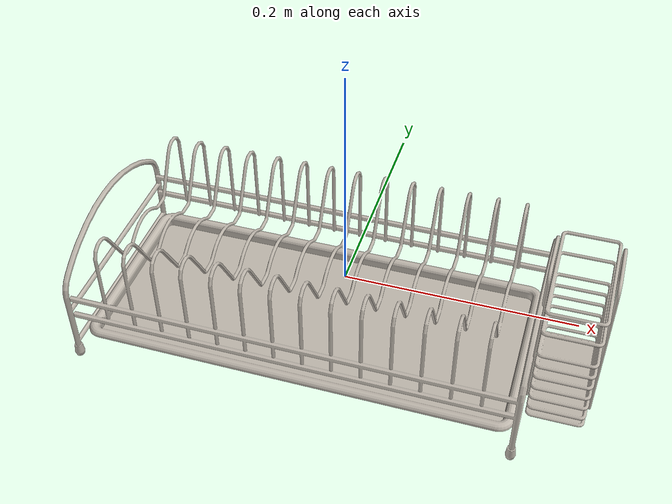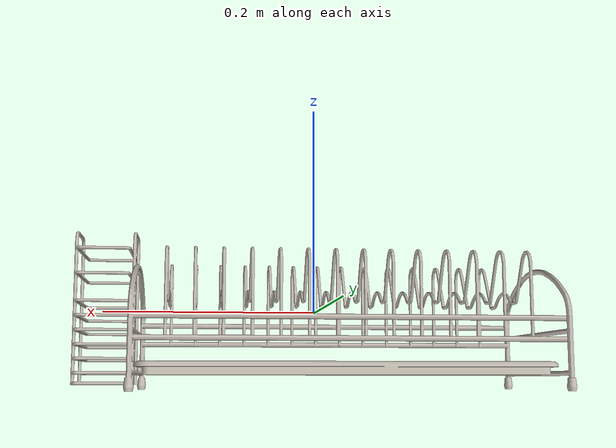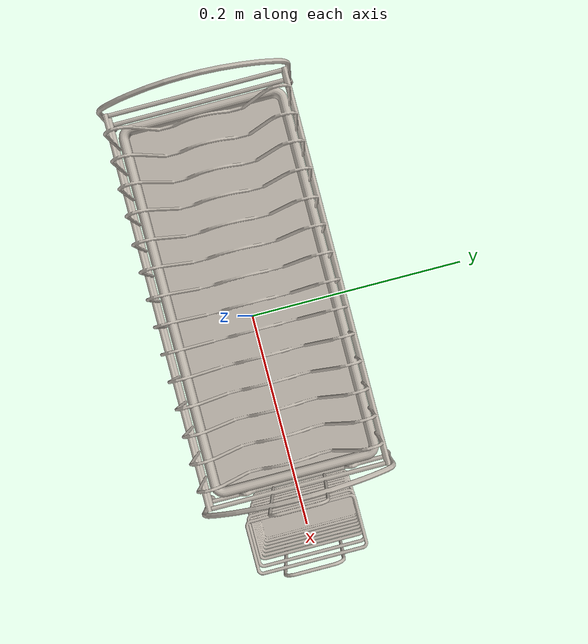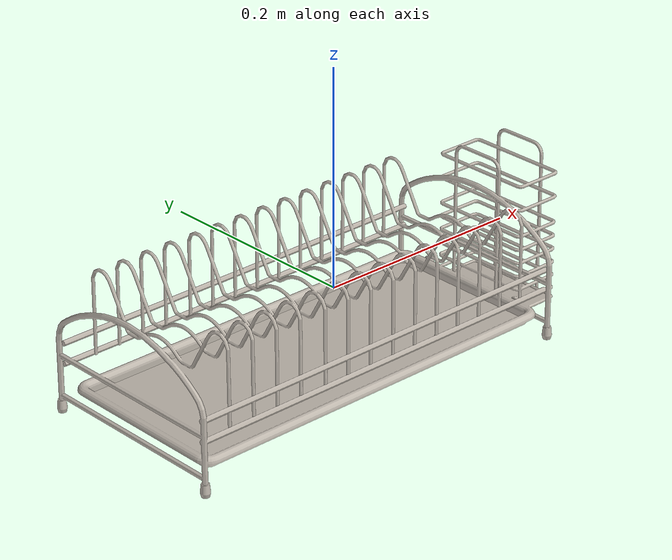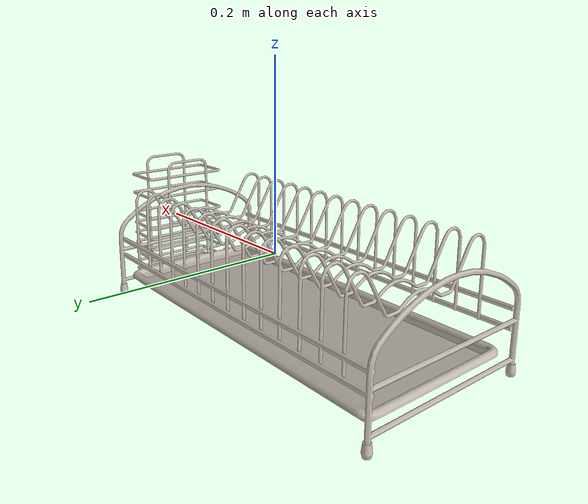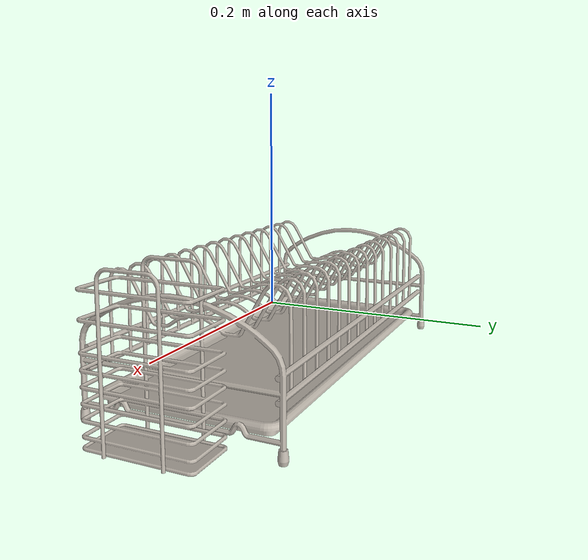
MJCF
<mujoco model="model">
  <option timestep="0.002" gravity="0.0 0.0 -9.81" />
  <compiler angle="radian" />
  <asset>
    <mesh file="visual/DishRack050.obj" name="DishRack050_vis" />
    <texture file="visual/T_BC001.png" name="DishRack050_material" type="2d" />
    <material name="DishRack050_material" rgba="1 1 1 1.0" texture="DishRack050_material" shininess="0.4472135901451111" specular="0.3103448502657381" />
  </asset>
  <default>
    <default class="visual">
      <geom conaffinity="0" contype="0" group="2" type="mesh" density="0" />
    </default>
    <default class="collision">
      <geom group="3" rgba="1 1 1 0.25" density="0" friction="1.2" />
    </default>
    <default class="spawn">
      <geom group="0" rgba="1 1 1 0.5" contype="0" conaffinity="0" />
      <site group="0" rgba="1 1 1 0.5" />
    </default>
    <default class="region">
      <geom group="1" conaffinity="0" contype="0" rgba="0 1 0 0" mass="0" />
    </default>
  </default>
  <worldbody>
    <body>
      <body name="object">
        <geom mesh="DishRack050_vis" type="mesh" class="visual" material="DishRack050_material" group="2" contype="0" conaffinity="0" density="0" mass="0.5" />
        <geom type="box" pos="-0.02115616 0.00082735 -0.05501562" size="0.19703775644302368 0.08911336213350296 0.009812294505536556" quat="1.0 0.0 0.0 0.0" class="collision" group="3" rgba="0 0 0 0" density="0" friction="1.2" />
        <geom type="box" pos="-0.21933006 0.00057172 -0.05883296" size="0.004999999888241291 0.09256390482187271 0.004999983124434948" quat="1.0 0.0 0.0 0.0" class="collision" group="3" rgba="0 0 0 0" density="0" friction="1.2" />
        <geom type="box" pos="-0.21960633 0.09246731 -0.03200718" size="0.004999999888241291 0.00500000175088644 0.0434909425675869" quat="1.0 0.0 0.0 0.0" class="collision" group="3" rgba="0 0 0 0" density="0" friction="1.2" />
        <geom type="box" pos="-0.21933006 0.00057172 -0.02034117" size="0.004999999888241291 0.09256390482187271 0.004999983590096235" quat="1.0 0.0 0.0 0.0" class="collision" group="3" rgba="0 0 0 0" density="0" friction="1.2" />
        <geom type="box" pos="-0.21960633 -0.09057799 -0.03200718" size="0.004999999888241291 0.00500000175088644 0.043490950018167496" quat="1.0 0.0 0.0 0.0" class="collision" group="3" rgba="0 0 0 0" density="0" friction="1.2" />
        <geom type="box" pos="-0.21960633 -0.06818052 0.01983970" size="0.004999999888241291 0.00500000175088644 0.043491180986166" quat="0.8804448246955872 -0.47414860129356384 0.0 0.0" class="collision" group="3" rgba="0 0 0 0" density="0" friction="1.2" />
        <geom type="box" pos="-0.21960633 0.00060924 0.03899860" size="0.004999999888241291 0.0434911772608757 0.004999980330467224" quat="1.0 0.0 0.0 0.0" class="collision" group="3" rgba="0 0 0 0" density="0" friction="1.2" />
        <geom type="box" pos="-0.21960633 0.06923353 0.02100375" size="0.004999999888241291 0.00500000175088644 0.043491180986166" quat="0.8926810622215271 0.4506889283657074 0.0 0.0" class="collision" group="3" rgba="0 0 0 0" density="0" friction="1.2" />
        <geom type="box" pos="0.16583329 0.06923353 0.02100375" size="0.004999999888241291 0.00500000175088644 0.043491180986166" quat="0.8926810622215271 0.4506889283657074 0.0 0.0" class="collision" group="3" rgba="0 0 0 0" density="0" friction="1.2" />
        <geom type="box" pos="0.16583329 0.00060924 0.03899860" size="0.004999999888241291 0.0434911772608757 0.004999980796128511" quat="1.0 0.0 0.0 0.0" class="collision" group="3" rgba="0 0 0 0" density="0" friction="1.2" />
        <geom type="box" pos="0.16583329 -0.06818052 0.01983970" size="0.004999999888241291 0.00500000175088644 0.043491180986166" quat="0.8804448246955872 -0.47414860129356384 0.0 0.0" class="collision" group="3" rgba="0 0 0 0" density="0" friction="1.2" />
        <geom type="box" pos="0.16583329 -0.09057799 -0.03200718" size="0.004999999888241291 0.00500000175088644 0.04349095746874809" quat="1.0 0.0 0.0 0.0" class="collision" group="3" rgba="0 0 0 0" density="0" friction="1.2" />
        <geom type="box" pos="0.16610956 0.00057172 -0.02034117" size="0.004999999888241291 0.09256390482187271 0.0049999854527413845" quat="1.0 0.0 0.0 0.0" class="collision" group="3" rgba="0 0 0 0" density="0" friction="1.2" />
        <geom type="box" pos="0.16583329 0.09246731 -0.03200718" size="0.004999999888241291 0.00500000175088644 0.04349096491932869" quat="1.0 0.0 0.0 0.0" class="collision" group="3" rgba="0 0 0 0" density="0" friction="1.2" />
        <geom type="box" pos="0.19784509 -0.04953684 -0.05554686" size="0.02414286695420742 0.0030323867686092854 0.0025553666055202484" quat="1.0 0.0 0.0 0.0" class="collision" group="3" rgba="0 0 0 0" density="0" friction="1.2" />
        <geom type="box" pos="-0.02734276 -0.08475694 -0.00918816" size="0.1962340921163559 0.0048832157626748085 0.004883221350610256" quat="1.0 0.0 0.0 0.0" class="collision" group="3" rgba="0 0 0 0" density="0" friction="1.2" />
        <geom type="box" pos="-0.02734276 -0.08475694 -0.02835791" size="0.1962341070175171 0.004883216228336096 0.0048832218162715435" quat="1.0 0.0 0.0 0.0" class="collision" group="3" rgba="0 0 0 0" density="0" friction="1.2" />
        <geom type="box" pos="-0.02734276 0.08900972 -0.02835791" size="0.19623412191867828 0.004883216693997383 0.004883222281932831" quat="1.0 0.0 0.0 0.0" class="collision" group="3" rgba="0 0 0 0" density="0" friction="1.2" />
        <geom type="box" pos="-0.02734276 0.08900972 -0.00918816" size="0.19623413681983948 0.004883217625319958 0.004883222747594118" quat="1.0 0.0 0.0 0.0" class="collision" group="3" rgba="0 0 0 0" density="0" friction="1.2" />
        <geom type="box" pos="0.19784509 0.04383259 -0.05554686" size="0.02414286695420742 0.0030323867686092854 0.0025553666055202484" quat="1.0 0.0 0.0 0.0" class="collision" group="3" rgba="0 0 0 0" density="0" friction="1.2" />
        <geom type="box" pos="0.22162279 -0.00347440 -0.05554686" size="0.003032393753528595 0.05015871673822403 0.0025553666055202484" quat="1.0 0.0 0.0 0.0" class="collision" group="3" rgba="0 0 0 0" density="0" friction="1.2" />
        <geom type="box" pos="0.17844625 -0.00347440 -0.05554686" size="0.003032393753528595 0.05015871673822403 0.0025553666055202484" quat="1.0 0.0 0.0 0.0" class="collision" group="3" rgba="0 0 0 0" density="0" friction="1.2" />
        <geom type="box" pos="0.17844625 -0.00347440 -0.04411493" size="0.003032393753528595 0.05015871673822403 0.0025553666055202484" quat="1.0 0.0 0.0 0.0" class="collision" group="3" rgba="0 0 0 0" density="0" friction="1.2" />
        <geom type="box" pos="0.22162279 -0.00347440 -0.04411493" size="0.003032393753528595 0.05015871673822403 0.0025553666055202484" quat="1.0 0.0 0.0 0.0" class="collision" group="3" rgba="0 0 0 0" density="0" friction="1.2" />
        <geom type="box" pos="0.19784509 0.04383259 -0.04411493" size="0.02414286695420742 0.0030323867686092854 0.0025553666055202484" quat="1.0 0.0 0.0 0.0" class="collision" group="3" rgba="0 0 0 0" density="0" friction="1.2" />
        <geom type="box" pos="0.19784509 -0.04953684 -0.04411493" size="0.02414286695420742 0.0030323867686092854 0.0025553666055202484" quat="1.0 0.0 0.0 0.0" class="collision" group="3" rgba="0 0 0 0" density="0" friction="1.2" />
        <geom type="box" pos="0.17844625 -0.00347440 -0.03177803" size="0.003032393753528595 0.05015871673822403 0.0025553666055202484" quat="1.0 0.0 0.0 0.0" class="collision" group="3" rgba="0 0 0 0" density="0" friction="1.2" />
        <geom type="box" pos="0.22162279 -0.00347440 -0.03177803" size="0.003032393753528595 0.05015871673822403 0.0025553666055202484" quat="1.0 0.0 0.0 0.0" class="collision" group="3" rgba="0 0 0 0" density="0" friction="1.2" />
        <geom type="box" pos="0.19784509 0.04383259 -0.03177803" size="0.02414286695420742 0.0030323867686092854 0.0025553666055202484" quat="1.0 0.0 0.0 0.0" class="collision" group="3" rgba="0 0 0 0" density="0" friction="1.2" />
        <geom type="box" pos="0.19784509 -0.04953684 -0.03177803" size="0.02414286695420742 0.0030323867686092854 0.0025553666055202484" quat="1.0 0.0 0.0 0.0" class="collision" group="3" rgba="0 0 0 0" density="0" friction="1.2" />
        <geom type="box" pos="0.17844625 -0.00347440 -0.01899122" size="0.003032393753528595 0.05015871673822403 0.0025553666055202484" quat="1.0 0.0 0.0 0.0" class="collision" group="3" rgba="0 0 0 0" density="0" friction="1.2" />
        <geom type="box" pos="0.22162279 -0.00347440 -0.01899122" size="0.003032393753528595 0.05015871673822403 0.0025553666055202484" quat="1.0 0.0 0.0 0.0" class="collision" group="3" rgba="0 0 0 0" density="0" friction="1.2" />
        <geom type="box" pos="0.19784509 0.04383259 -0.01899122" size="0.02414286695420742 0.0030323867686092854 0.0025553666055202484" quat="1.0 0.0 0.0 0.0" class="collision" group="3" rgba="0 0 0 0" density="0" friction="1.2" />
        <geom type="box" pos="0.19784509 -0.04953684 -0.01899122" size="0.02414286695420742 0.0030323867686092854 0.0025553666055202484" quat="1.0 0.0 0.0 0.0" class="collision" group="3" rgba="0 0 0 0" density="0" friction="1.2" />
        <geom type="box" pos="0.17844625 -0.00347440 -0.00560479" size="0.003032393753528595 0.05015871673822403 0.0025553666055202484" quat="1.0 0.0 0.0 0.0" class="collision" group="3" rgba="0 0 0 0" density="0" friction="1.2" />
        <geom type="box" pos="0.22162279 -0.00347440 -0.00560479" size="0.003032393753528595 0.05015871673822403 0.0025553666055202484" quat="1.0 0.0 0.0 0.0" class="collision" group="3" rgba="0 0 0 0" density="0" friction="1.2" />
        <geom type="box" pos="0.19784509 0.04383259 -0.00560479" size="0.02414286695420742 0.0030323867686092854 0.0025553666055202484" quat="1.0 0.0 0.0 0.0" class="collision" group="3" rgba="0 0 0 0" density="0" friction="1.2" />
        <geom type="box" pos="0.19784509 -0.04953684 -0.00560479" size="0.02414286695420742 0.0030323867686092854 0.0025553666055202484" quat="1.0 0.0 0.0 0.0" class="collision" group="3" rgba="0 0 0 0" density="0" friction="1.2" />
        <geom type="box" pos="0.17844625 -0.00347440 0.00707240" size="0.003032393753528595 0.05015871673822403 0.0025553666055202484" quat="1.0 0.0 0.0 0.0" class="collision" group="3" rgba="0 0 0 0" density="0" friction="1.2" />
        <geom type="box" pos="0.22162279 -0.00347440 0.00707240" size="0.003032393753528595 0.05015871673822403 0.0025553666055202484" quat="1.0 0.0 0.0 0.0" class="collision" group="3" rgba="0 0 0 0" density="0" friction="1.2" />
        <geom type="box" pos="0.19784509 0.04383259 0.00707240" size="0.02414286695420742 0.0030323867686092854 0.0025553666055202484" quat="1.0 0.0 0.0 0.0" class="collision" group="3" rgba="0 0 0 0" density="0" friction="1.2" />
        <geom type="box" pos="0.19784509 -0.04953684 0.00707240" size="0.02414286695420742 0.0030323867686092854 0.0025553666055202484" quat="1.0 0.0 0.0 0.0" class="collision" group="3" rgba="0 0 0 0" density="0" friction="1.2" />
        <geom type="box" pos="0.17844625 -0.00347440 0.03158533" size="0.003032393753528595 0.05015871673822403 0.0025553666055202484" quat="1.0 0.0 0.0 0.0" class="collision" group="3" rgba="0 0 0 0" density="0" friction="1.2" />
        <geom type="box" pos="0.22162279 -0.00347440 0.03158533" size="0.003032393753528595 0.05015871673822403 0.0025553666055202484" quat="1.0 0.0 0.0 0.0" class="collision" group="3" rgba="0 0 0 0" density="0" friction="1.2" />
        <geom type="box" pos="0.19784509 0.04383259 0.03158533" size="0.02414286695420742 0.0030323867686092854 0.0025553666055202484" quat="1.0 0.0 0.0 0.0" class="collision" group="3" rgba="0 0 0 0" density="0" friction="1.2" />
        <geom type="box" pos="0.19784509 -0.04953684 0.03158533" size="0.02414286695420742 0.0030323867686092854 0.0025553666055202484" quat="1.0 0.0 0.0 0.0" class="collision" group="3" rgba="0 0 0 0" density="0" friction="1.2" />
        <geom type="box" pos="0.17844625 -0.00347440 0.05439672" size="0.003032393753528595 0.05015871673822403 0.0025553666055202484" quat="1.0 0.0 0.0 0.0" class="collision" group="3" rgba="0 0 0 0" density="0" friction="1.2" />
        <geom type="box" pos="0.22162279 -0.00347440 0.05439672" size="0.003032393753528595 0.05015871673822403 0.0025553666055202484" quat="1.0 0.0 0.0 0.0" class="collision" group="3" rgba="0 0 0 0" density="0" friction="1.2" />
        <geom type="box" pos="0.19784509 0.04383259 0.05439672" size="0.02414286695420742 0.0030323867686092854 0.0025553666055202484" quat="1.0 0.0 0.0 0.0" class="collision" group="3" rgba="0 0 0 0" density="0" friction="1.2" />
        <geom type="box" pos="0.19784509 -0.04953684 0.05439672" size="0.02414286695420742 0.0030323867686092854 0.0025553666055202484" quat="1.0 0.0 0.0 0.0" class="collision" group="3" rgba="0 0 0 0" density="0" friction="1.2" />
        <geom type="box" pos="0.16910948 -0.02584220 0.00081628" size="0.003032403066754341 0.0025553691666573286 0.07128959149122238" quat="1.0 0.0 0.0 0.0" class="collision" group="3" rgba="0 0 0 0" density="0" friction="1.2" />
        <geom type="box" pos="0.16910948 0.02561059 0.00081628" size="0.003032403066754341 0.0025553691666573286 0.07128959149122238" quat="1.0 0.0 0.0 0.0" class="collision" group="3" rgba="0 0 0 0" density="0" friction="1.2" />
        <geom type="box" pos="0.16910948 0.00009373 0.07085934" size="0.0030323935206979513 0.027848513796925545 0.003143641399219632" quat="1.0 0.0 0.0 0.0" class="collision" group="3" rgba="0 0 0 0" density="0" friction="1.2" />
        <geom type="box" pos="0.22263829 0.00009373 0.07085934" size="0.0030323935206979513 0.027848513796925545 0.003143641632050276" quat="1.0 0.0 0.0 0.0" class="collision" group="3" rgba="0 0 0 0" density="0" friction="1.2" />
        <geom type="box" pos="0.22263829 0.02561059 0.00081628" size="0.003032403066754341 0.0025553691666573286 0.07128959149122238" quat="1.0 0.0 0.0 0.0" class="collision" group="3" rgba="0 0 0 0" density="0" friction="1.2" />
        <geom type="box" pos="0.22263829 -0.02584220 0.00081628" size="0.003032403066754341 0.0025553691666573286 0.07128959149122238" quat="1.0 0.0 0.0 0.0" class="collision" group="3" rgba="0 0 0 0" density="0" friction="1.2" />
        <geom type="box" pos="-0.18751322 -0.08283846 0.00648969" size="0.0020000000949949026 0.0020000000949949026 0.038996532559394836" quat="1.0 0.0 0.0 0.0" class="collision" group="3" rgba="0 0 0 0" density="0" friction="1.2" />
        <geom type="box" pos="-0.18751322 0.08475921 0.00648969" size="0.0020000000949949026 0.0020000000949949026 0.038996532559394836" quat="1.0 0.0 0.0 0.0" class="collision" group="3" rgba="0 0 0 0" density="0" friction="1.2" />
        <geom type="box" pos="-0.18751322 0.07858811 0.05054504" size="0.0020000000949949026 0.0020000000949949026 0.012861630879342556" quat="0.8579508662223816 0.5137317776679993 0.0 0.0" class="collision" group="3" rgba="0 0 0 0" density="0" friction="1.2" />
        <geom type="box" pos="-0.18764597 0.05598416 0.03252206" size="0.00231561460532248 0.0038496481720358133 0.027936508879065514" quat="0.31886813044548035 0.9475743174552917 -0.019563382491469383 -0.0065832724794745445" class="collision" group="3" rgba="0 0 0 0" density="0" friction="1.2" />
        <geom type="box" pos="-0.18764597 -0.05438035 0.03316031" size="0.00231561460532248 0.0038496481720358133 0.027936505153775215" quat="0.259395033121109 -0.9655507206916809 0.012641362845897675 0.01631751097738743" class="collision" group="3" rgba="0 0 0 0" density="0" friction="1.2" />
        <geom type="box" pos="-0.18751322 -0.07641044 0.05004504" size="0.0020000000949949026 0.0020000000949949026 0.01286163181066513" quat="0.5196169018745422 0.8543993234634399 0.0 0.0" class="collision" group="3" rgba="0 0 0 0" density="0" friction="1.2" />
        <geom type="box" pos="-0.18751322 0.03432833 0.00868171" size="0.0020000000949949026 0.0020000000949949026 0.012861630879342556" quat="0.7135465145111084 0.7006078362464905 0.0 0.0" class="collision" group="3" rgba="0 0 0 0" density="0" friction="1.2" />
        <geom type="box" pos="-0.18751322 -0.03101538 0.00868171" size="0.0020000000949949026 0.0020000000949949026 0.012861630879342556" quat="0.7135465145111084 0.7006078362464905 0.0 0.0" class="collision" group="3" rgba="0 0 0 0" density="0" friction="1.2" />
        <geom type="box" pos="-0.18751322 -0.01664228 0.01448881" size="0.0020000000949949026 0.0020000000949949026 0.01286163181066513" quat="0.5267975330352783 0.8499907851219177 0.0 0.0" class="collision" group="3" rgba="0 0 0 0" density="0" friction="1.2" />
        <geom type="box" pos="-0.18751322 0.01696871 0.01543445" size="0.0020000000949949026 0.0020000000949949026 0.012861632741987705" quat="0.847457766532898 0.5308628678321838 0.0 0.0" class="collision" group="3" rgba="0 0 0 0" density="0" friction="1.2" />
        <geom type="box" pos="-0.18751322 0.00114079 0.01971562" size="0.0020000000949949026 0.0020000003278255463 0.01286163181066513" quat="0.7150533199310303 0.6990699172019958 0.0 0.0" class="collision" group="3" rgba="0 0 0 0" density="0" friction="1.2" />
        <geom type="box" pos="-0.16259052 0.00114079 0.01971562" size="0.0020000000949949026 0.0020000003278255463 0.01286163181066513" quat="0.7150533199310303 0.6990699172019958 0.0 0.0" class="collision" group="3" rgba="0 0 0 0" density="0" friction="1.2" />
        <geom type="box" pos="-0.16259052 0.01696871 0.01543445" size="0.0020000000949949026 0.0020000000949949026 0.012861632741987705" quat="0.847457766532898 0.5308628678321838 0.0 0.0" class="collision" group="3" rgba="0 0 0 0" density="0" friction="1.2" />
        <geom type="box" pos="-0.16259052 -0.01664228 0.01448881" size="0.0020000000949949026 0.0020000000949949026 0.01286163181066513" quat="0.5267975330352783 0.8499907851219177 0.0 0.0" class="collision" group="3" rgba="0 0 0 0" density="0" friction="1.2" />
        <geom type="box" pos="-0.16259052 -0.03101538 0.00868171" size="0.0020000000949949026 0.0020000000949949026 0.012861630879342556" quat="0.7135465145111084 0.7006078362464905 0.0 0.0" class="collision" group="3" rgba="0 0 0 0" density="0" friction="1.2" />
        <geom type="box" pos="-0.16259052 0.03432833 0.00868171" size="0.0020000000949949026 0.0020000000949949026 0.012861630879342556" quat="0.7135465145111084 0.7006078362464905 0.0 0.0" class="collision" group="3" rgba="0 0 0 0" density="0" friction="1.2" />
        <geom type="box" pos="-0.16259052 -0.07641044 0.05004504" size="0.0020000000949949026 0.0020000000949949026 0.01286163181066513" quat="0.5196169018745422 0.8543993234634399 0.0 0.0" class="collision" group="3" rgba="0 0 0 0" density="0" friction="1.2" />
        <geom type="box" pos="-0.16272327 -0.05438035 0.03316031" size="0.00231561460532248 0.0038496481720358133 0.027936505153775215" quat="0.259395033121109 -0.9655507206916809 0.012641362845897675 0.01631751097738743" class="collision" group="3" rgba="0 0 0 0" density="0" friction="1.2" />
        <geom type="box" pos="-0.16272327 0.05598416 0.03252206" size="0.00231561460532248 0.0038496481720358133 0.027936508879065514" quat="0.31886813044548035 0.9475743174552917 -0.019563382491469383 -0.0065832724794745445" class="collision" group="3" rgba="0 0 0 0" density="0" friction="1.2" />
        <geom type="box" pos="-0.16259052 0.07858811 0.05054504" size="0.0020000000949949026 0.0020000000949949026 0.012861630879342556" quat="0.8579508662223816 0.5137317776679993 0.0 0.0" class="collision" group="3" rgba="0 0 0 0" density="0" friction="1.2" />
        <geom type="box" pos="-0.16259052 0.08475921 0.00648969" size="0.0020000000949949026 0.0020000000949949026 0.038996532559394836" quat="1.0 0.0 0.0 0.0" class="collision" group="3" rgba="0 0 0 0" density="0" friction="1.2" />
        <geom type="box" pos="-0.16259052 -0.08283846 0.00648969" size="0.0020000000949949026 0.0020000000949949026 0.038996532559394836" quat="1.0 0.0 0.0 0.0" class="collision" group="3" rgba="0 0 0 0" density="0" friction="1.2" />
        <geom type="box" pos="-0.13785014 -0.08283846 0.00648969" size="0.0020000000949949026 0.0020000000949949026 0.038996532559394836" quat="1.0 0.0 0.0 0.0" class="collision" group="3" rgba="0 0 0 0" density="0" friction="1.2" />
        <geom type="box" pos="-0.13785014 0.08475921 0.00648969" size="0.0020000000949949026 0.0020000000949949026 0.038996532559394836" quat="1.0 0.0 0.0 0.0" class="collision" group="3" rgba="0 0 0 0" density="0" friction="1.2" />
        <geom type="box" pos="-0.13785014 0.07858811 0.05054504" size="0.0020000000949949026 0.0020000000949949026 0.012861630879342556" quat="0.8579508662223816 0.5137317776679993 0.0 0.0" class="collision" group="3" rgba="0 0 0 0" density="0" friction="1.2" />
        <geom type="box" pos="-0.13798289 0.05598416 0.03252206" size="0.00231561460532248 0.0038496481720358133 0.027936508879065514" quat="0.31886813044548035 0.9475743174552917 -0.019563382491469383 -0.0065832724794745445" class="collision" group="3" rgba="0 0 0 0" density="0" friction="1.2" />
        <geom type="box" pos="-0.13798289 -0.05438035 0.03316031" size="0.00231561460532248 0.0038496481720358133 0.027936505153775215" quat="0.259395033121109 -0.9655507206916809 0.012641362845897675 0.01631751097738743" class="collision" group="3" rgba="0 0 0 0" density="0" friction="1.2" />
        <geom type="box" pos="-0.13785014 -0.07641044 0.05004504" size="0.0020000000949949026 0.0020000000949949026 0.01286163181066513" quat="0.5196169018745422 0.8543993234634399 0.0 0.0" class="collision" group="3" rgba="0 0 0 0" density="0" friction="1.2" />
        <geom type="box" pos="-0.13785014 0.03432833 0.00868171" size="0.0020000000949949026 0.0020000000949949026 0.012861630879342556" quat="0.7135465145111084 0.7006078362464905 0.0 0.0" class="collision" group="3" rgba="0 0 0 0" density="0" friction="1.2" />
        <geom type="box" pos="-0.13785014 -0.03101538 0.00868171" size="0.0020000000949949026 0.0020000000949949026 0.012861630879342556" quat="0.7135465145111084 0.7006078362464905 0.0 0.0" class="collision" group="3" rgba="0 0 0 0" density="0" friction="1.2" />
        <geom type="box" pos="-0.13785014 -0.01664228 0.01448881" size="0.0020000000949949026 0.0020000000949949026 0.01286163181066513" quat="0.5267975330352783 0.8499907851219177 0.0 0.0" class="collision" group="3" rgba="0 0 0 0" density="0" friction="1.2" />
        <geom type="box" pos="-0.13785014 0.01696871 0.01543445" size="0.0020000000949949026 0.0020000000949949026 0.012861632741987705" quat="0.847457766532898 0.5308628678321838 0.0 0.0" class="collision" group="3" rgba="0 0 0 0" density="0" friction="1.2" />
        <geom type="box" pos="-0.13785014 0.00114079 0.01971562" size="0.0020000000949949026 0.0020000003278255463 0.01286163181066513" quat="0.7150533199310303 0.6990699172019958 0.0 0.0" class="collision" group="3" rgba="0 0 0 0" density="0" friction="1.2" />
        <geom type="box" pos="-0.11310972 0.00114079 0.01971562" size="0.0020000000949949026 0.0020000003278255463 0.01286163181066513" quat="0.7150533199310303 0.6990699172019958 0.0 0.0" class="collision" group="3" rgba="0 0 0 0" density="0" friction="1.2" />
        <geom type="box" pos="-0.11310972 0.01696871 0.01543445" size="0.0020000000949949026 0.0020000000949949026 0.012861632741987705" quat="0.847457766532898 0.5308628678321838 0.0 0.0" class="collision" group="3" rgba="0 0 0 0" density="0" friction="1.2" />
        <geom type="box" pos="-0.11310972 -0.01664228 0.01448881" size="0.0020000000949949026 0.0020000000949949026 0.01286163181066513" quat="0.5267975330352783 0.8499907851219177 0.0 0.0" class="collision" group="3" rgba="0 0 0 0" density="0" friction="1.2" />
        <geom type="box" pos="-0.11310972 -0.03101538 0.00868171" size="0.0020000000949949026 0.0020000000949949026 0.012861630879342556" quat="0.7135465145111084 0.7006078362464905 0.0 0.0" class="collision" group="3" rgba="0 0 0 0" density="0" friction="1.2" />
        <geom type="box" pos="-0.11310972 0.03432833 0.00868171" size="0.0020000000949949026 0.0020000000949949026 0.012861630879342556" quat="0.7135465145111084 0.7006078362464905 0.0 0.0" class="collision" group="3" rgba="0 0 0 0" density="0" friction="1.2" />
        <geom type="box" pos="-0.11310972 -0.07641044 0.05004504" size="0.0020000000949949026 0.0020000000949949026 0.01286163181066513" quat="0.5196169018745422 0.8543993234634399 0.0 0.0" class="collision" group="3" rgba="0 0 0 0" density="0" friction="1.2" />
        <geom type="box" pos="-0.11324246 -0.05438035 0.03316031" size="0.00231561460532248 0.0038496481720358133 0.027936505153775215" quat="0.259395033121109 -0.9655507206916809 0.012641362845897675 0.01631751097738743" class="collision" group="3" rgba="0 0 0 0" density="0" friction="1.2" />
        <geom type="box" pos="-0.11324246 0.05598416 0.03252206" size="0.00231561460532248 0.0038496481720358133 0.027936508879065514" quat="0.31886813044548035 0.9475743174552917 -0.019563382491469383 -0.0065832724794745445" class="collision" group="3" rgba="0 0 0 0" density="0" friction="1.2" />
        <geom type="box" pos="-0.11310972 0.07858811 0.05054504" size="0.0020000000949949026 0.0020000000949949026 0.012861630879342556" quat="0.8579508662223816 0.5137317776679993 0.0 0.0" class="collision" group="3" rgba="0 0 0 0" density="0" friction="1.2" />
        <geom type="box" pos="-0.11310972 0.08475921 0.00648969" size="0.0020000000949949026 0.0020000000949949026 0.038996532559394836" quat="1.0 0.0 0.0 0.0" class="collision" group="3" rgba="0 0 0 0" density="0" friction="1.2" />
        <geom type="box" pos="-0.11310972 -0.08283846 0.00648969" size="0.0020000000949949026 0.0020000000949949026 0.038996532559394836" quat="1.0 0.0 0.0 0.0" class="collision" group="3" rgba="0 0 0 0" density="0" friction="1.2" />
        <geom type="box" pos="-0.08721852 -0.08283846 0.00648969" size="0.0020000000949949026 0.0020000000949949026 0.038996532559394836" quat="1.0 0.0 0.0 0.0" class="collision" group="3" rgba="0 0 0 0" density="0" friction="1.2" />
        <geom type="box" pos="-0.08721852 0.08475921 0.00648969" size="0.0020000000949949026 0.0020000000949949026 0.038996532559394836" quat="1.0 0.0 0.0 0.0" class="collision" group="3" rgba="0 0 0 0" density="0" friction="1.2" />
        <geom type="box" pos="-0.08721852 0.07858811 0.05054504" size="0.0020000000949949026 0.0020000000949949026 0.012861630879342556" quat="0.8579508662223816 0.5137317776679993 0.0 0.0" class="collision" group="3" rgba="0 0 0 0" density="0" friction="1.2" />
        <geom type="box" pos="-0.08735127 0.05598416 0.03252206" size="0.00231561460532248 0.0038496481720358133 0.027936508879065514" quat="0.31886813044548035 0.9475743174552917 -0.019563382491469383 -0.0065832724794745445" class="collision" group="3" rgba="0 0 0 0" density="0" friction="1.2" />
        <geom type="box" pos="-0.08735127 -0.05438035 0.03316031" size="0.00231561460532248 0.0038496481720358133 0.027936505153775215" quat="0.259395033121109 -0.9655507206916809 0.012641362845897675 0.01631751097738743" class="collision" group="3" rgba="0 0 0 0" density="0" friction="1.2" />
        <geom type="box" pos="-0.08721852 -0.07641044 0.05004504" size="0.0020000000949949026 0.0020000000949949026 0.01286163181066513" quat="0.5196169018745422 0.8543993234634399 0.0 0.0" class="collision" group="3" rgba="0 0 0 0" density="0" friction="1.2" />
        <geom type="box" pos="-0.08721852 0.03432833 0.00868171" size="0.0020000000949949026 0.0020000000949949026 0.012861630879342556" quat="0.7135465145111084 0.7006078362464905 0.0 0.0" class="collision" group="3" rgba="0 0 0 0" density="0" friction="1.2" />
        <geom type="box" pos="-0.08721852 -0.03101538 0.00868171" size="0.0020000000949949026 0.0020000000949949026 0.012861630879342556" quat="0.7135465145111084 0.7006078362464905 0.0 0.0" class="collision" group="3" rgba="0 0 0 0" density="0" friction="1.2" />
        <geom type="box" pos="-0.08721852 -0.01664228 0.01448881" size="0.0020000000949949026 0.0020000000949949026 0.01286163181066513" quat="0.5267975330352783 0.8499907851219177 0.0 0.0" class="collision" group="3" rgba="0 0 0 0" density="0" friction="1.2" />
        <geom type="box" pos="-0.08721852 0.01696871 0.01543445" size="0.0020000000949949026 0.0020000000949949026 0.012861632741987705" quat="0.847457766532898 0.5308628678321838 0.0 0.0" class="collision" group="3" rgba="0 0 0 0" density="0" friction="1.2" />
        <geom type="box" pos="-0.08721852 0.00114079 0.01971562" size="0.0020000000949949026 0.0020000003278255463 0.01286163181066513" quat="0.7150533199310303 0.6990699172019958 0.0 0.0" class="collision" group="3" rgba="0 0 0 0" density="0" friction="1.2" />
        <geom type="box" pos="-0.06222702 0.00114079 0.01971562" size="0.0020000000949949026 0.0020000003278255463 0.01286163181066513" quat="0.7150533199310303 0.6990699172019958 0.0 0.0" class="collision" group="3" rgba="0 0 0 0" density="0" friction="1.2" />
        <geom type="box" pos="-0.06222702 0.01696871 0.01543445" size="0.0020000000949949026 0.0020000000949949026 0.012861632741987705" quat="0.847457766532898 0.5308628678321838 0.0 0.0" class="collision" group="3" rgba="0 0 0 0" density="0" friction="1.2" />
        <geom type="box" pos="-0.06222702 -0.01664228 0.01448881" size="0.0020000000949949026 0.0020000000949949026 0.01286163181066513" quat="0.5267975330352783 0.8499907851219177 0.0 0.0" class="collision" group="3" rgba="0 0 0 0" density="0" friction="1.2" />
        <geom type="box" pos="-0.06222702 -0.03101538 0.00868171" size="0.0020000000949949026 0.0020000000949949026 0.012861630879342556" quat="0.7135465145111084 0.7006078362464905 0.0 0.0" class="collision" group="3" rgba="0 0 0 0" density="0" friction="1.2" />
        <geom type="box" pos="-0.06222702 0.03432833 0.00868171" size="0.0020000000949949026 0.0020000000949949026 0.012861630879342556" quat="0.7135465145111084 0.7006078362464905 0.0 0.0" class="collision" group="3" rgba="0 0 0 0" density="0" friction="1.2" />
        <geom type="box" pos="-0.06222702 -0.07641044 0.05004504" size="0.0020000000949949026 0.0020000000949949026 0.01286163181066513" quat="0.5196169018745422 0.8543993234634399 0.0 0.0" class="collision" group="3" rgba="0 0 0 0" density="0" friction="1.2" />
        <geom type="box" pos="-0.06235977 -0.05438035 0.03316031" size="0.00231561460532248 0.0038496481720358133 0.027936505153775215" quat="0.259395033121109 -0.9655507206916809 0.012641362845897675 0.01631751097738743" class="collision" group="3" rgba="0 0 0 0" density="0" friction="1.2" />
        <geom type="box" pos="-0.06235977 0.05598416 0.03252206" size="0.00231561460532248 0.0038496481720358133 0.027936508879065514" quat="0.31886813044548035 0.9475743174552917 -0.019563382491469383 -0.0065832724794745445" class="collision" group="3" rgba="0 0 0 0" density="0" friction="1.2" />
        <geom type="box" pos="-0.06222702 0.07858811 0.05054504" size="0.0020000000949949026 0.0020000000949949026 0.012861630879342556" quat="0.8579508662223816 0.5137317776679993 0.0 0.0" class="collision" group="3" rgba="0 0 0 0" density="0" friction="1.2" />
        <geom type="box" pos="-0.06222702 0.08475921 0.00648969" size="0.0020000000949949026 0.0020000000949949026 0.038996532559394836" quat="1.0 0.0 0.0 0.0" class="collision" group="3" rgba="0 0 0 0" density="0" friction="1.2" />
        <geom type="box" pos="-0.06222702 -0.08283846 0.00648969" size="0.0020000000949949026 0.0020000000949949026 0.038996532559394836" quat="1.0 0.0 0.0 0.0" class="collision" group="3" rgba="0 0 0 0" density="0" friction="1.2" />
        <geom type="box" pos="-0.03673694 -0.08283846 0.00648969" size="0.0020000000949949026 0.0020000000949949026 0.038996532559394836" quat="1.0 0.0 0.0 0.0" class="collision" group="3" rgba="0 0 0 0" density="0" friction="1.2" />
        <geom type="box" pos="-0.03673694 0.08475921 0.00648969" size="0.0020000000949949026 0.0020000000949949026 0.038996532559394836" quat="1.0 0.0 0.0 0.0" class="collision" group="3" rgba="0 0 0 0" density="0" friction="1.2" />
        <geom type="box" pos="-0.03673694 0.07858811 0.05054504" size="0.0020000000949949026 0.0020000000949949026 0.012861630879342556" quat="0.8579508662223816 0.5137317776679993 0.0 0.0" class="collision" group="3" rgba="0 0 0 0" density="0" friction="1.2" />
        <geom type="box" pos="-0.03686969 0.05598416 0.03252206" size="0.00231561460532248 0.0038496481720358133 0.027936508879065514" quat="0.31886813044548035 0.9475743174552917 -0.019563382491469383 -0.0065832724794745445" class="collision" group="3" rgba="0 0 0 0" density="0" friction="1.2" />
        <geom type="box" pos="-0.03686969 -0.05438035 0.03316031" size="0.00231561460532248 0.0038496481720358133 0.027936505153775215" quat="0.259395033121109 -0.9655507206916809 0.012641362845897675 0.01631751097738743" class="collision" group="3" rgba="0 0 0 0" density="0" friction="1.2" />
        <geom type="box" pos="-0.03673694 -0.07641044 0.05004504" size="0.0020000000949949026 0.0020000000949949026 0.01286163181066513" quat="0.5196169018745422 0.8543993234634399 0.0 0.0" class="collision" group="3" rgba="0 0 0 0" density="0" friction="1.2" />
        <geom type="box" pos="-0.03673694 0.03432833 0.00868171" size="0.0020000000949949026 0.0020000000949949026 0.012861630879342556" quat="0.7135465145111084 0.7006078362464905 0.0 0.0" class="collision" group="3" rgba="0 0 0 0" density="0" friction="1.2" />
        <geom type="box" pos="-0.03673694 -0.03101538 0.00868171" size="0.0020000000949949026 0.0020000000949949026 0.012861630879342556" quat="0.7135465145111084 0.7006078362464905 0.0 0.0" class="collision" group="3" rgba="0 0 0 0" density="0" friction="1.2" />
        <geom type="box" pos="-0.03673694 -0.01664228 0.01448881" size="0.0020000000949949026 0.0020000000949949026 0.01286163181066513" quat="0.5267975330352783 0.8499907851219177 0.0 0.0" class="collision" group="3" rgba="0 0 0 0" density="0" friction="1.2" />
        <geom type="box" pos="-0.03673694 0.01696871 0.01543445" size="0.0020000000949949026 0.0020000000949949026 0.012861632741987705" quat="0.847457766532898 0.5308628678321838 0.0 0.0" class="collision" group="3" rgba="0 0 0 0" density="0" friction="1.2" />
        <geom type="box" pos="-0.03673694 0.00114079 0.01971562" size="0.0020000000949949026 0.0020000003278255463 0.01286163181066513" quat="0.7150533199310303 0.6990699172019958 0.0 0.0" class="collision" group="3" rgba="0 0 0 0" density="0" friction="1.2" />
        <geom type="box" pos="-0.01123111 0.00114079 0.01971562" size="0.0020000000949949026 0.0020000003278255463 0.01286163181066513" quat="0.7150533199310303 0.6990699172019958 0.0 0.0" class="collision" group="3" rgba="0 0 0 0" density="0" friction="1.2" />
        <geom type="box" pos="-0.01123111 0.01696871 0.01543445" size="0.0020000000949949026 0.0020000000949949026 0.012861632741987705" quat="0.847457766532898 0.5308628678321838 0.0 0.0" class="collision" group="3" rgba="0 0 0 0" density="0" friction="1.2" />
        <geom type="box" pos="-0.01123111 -0.01664228 0.01448881" size="0.0020000000949949026 0.0020000000949949026 0.01286163181066513" quat="0.5267975330352783 0.8499907851219177 0.0 0.0" class="collision" group="3" rgba="0 0 0 0" density="0" friction="1.2" />
        <geom type="box" pos="-0.01123111 -0.03101538 0.00868171" size="0.0020000000949949026 0.0020000000949949026 0.012861630879342556" quat="0.7135465145111084 0.7006078362464905 0.0 0.0" class="collision" group="3" rgba="0 0 0 0" density="0" friction="1.2" />
        <geom type="box" pos="-0.01123111 0.03432833 0.00868171" size="0.0020000000949949026 0.0020000000949949026 0.012861630879342556" quat="0.7135465145111084 0.7006078362464905 0.0 0.0" class="collision" group="3" rgba="0 0 0 0" density="0" friction="1.2" />
        <geom type="box" pos="-0.01123111 -0.07641044 0.05004504" size="0.0020000000949949026 0.0020000000949949026 0.01286163181066513" quat="0.5196169018745422 0.8543993234634399 0.0 0.0" class="collision" group="3" rgba="0 0 0 0" density="0" friction="1.2" />
        <geom type="box" pos="-0.01136386 -0.05438035 0.03316031" size="0.00231561460532248 0.0038496481720358133 0.027936505153775215" quat="0.259395033121109 -0.9655507206916809 0.012641362845897675 0.01631751097738743" class="collision" group="3" rgba="0 0 0 0" density="0" friction="1.2" />
        <geom type="box" pos="-0.01136386 0.05598416 0.03252206" size="0.00231561460532248 0.0038496481720358133 0.027936508879065514" quat="0.31886813044548035 0.9475743174552917 -0.019563382491469383 -0.0065832724794745445" class="collision" group="3" rgba="0 0 0 0" density="0" friction="1.2" />
        <geom type="box" pos="-0.01123111 0.07858811 0.05054504" size="0.0020000000949949026 0.0020000000949949026 0.012861630879342556" quat="0.8579508662223816 0.5137317776679993 0.0 0.0" class="collision" group="3" rgba="0 0 0 0" density="0" friction="1.2" />
        <geom type="box" pos="-0.01123111 0.08475921 0.00648969" size="0.0020000000949949026 0.0020000000949949026 0.038996532559394836" quat="1.0 0.0 0.0 0.0" class="collision" group="3" rgba="0 0 0 0" density="0" friction="1.2" />
        <geom type="box" pos="-0.01123111 -0.08283846 0.00648969" size="0.0020000000949949026 0.0020000000949949026 0.038996532559394836" quat="1.0 0.0 0.0 0.0" class="collision" group="3" rgba="0 0 0 0" density="0" friction="1.2" />
        <geom type="box" pos="0.03836649 -0.08283846 0.00648969" size="0.0020000000949949026 0.0020000000949949026 0.038996532559394836" quat="1.0 0.0 0.0 0.0" class="collision" group="3" rgba="0 0 0 0" density="0" friction="1.2" />
        <geom type="box" pos="0.03836649 0.08475921 0.00648969" size="0.0020000000949949026 0.0020000000949949026 0.038996532559394836" quat="1.0 0.0 0.0 0.0" class="collision" group="3" rgba="0 0 0 0" density="0" friction="1.2" />
        <geom type="box" pos="0.03836649 0.07858811 0.05054504" size="0.0020000000949949026 0.0020000000949949026 0.012861630879342556" quat="0.8579508662223816 0.5137317776679993 0.0 0.0" class="collision" group="3" rgba="0 0 0 0" density="0" friction="1.2" />
        <geom type="box" pos="0.03823373 0.05598416 0.03252206" size="0.00231561460532248 0.0038496481720358133 0.027936508879065514" quat="0.31886813044548035 0.9475743174552917 -0.019563382491469383 -0.0065832724794745445" class="collision" group="3" rgba="0 0 0 0" density="0" friction="1.2" />
        <geom type="box" pos="0.03823373 -0.05438035 0.03316031" size="0.00231561460532248 0.0038496481720358133 0.027936505153775215" quat="0.259395033121109 -0.9655507206916809 0.012641362845897675 0.01631751097738743" class="collision" group="3" rgba="0 0 0 0" density="0" friction="1.2" />
        <geom type="box" pos="0.03836649 -0.07641044 0.05004504" size="0.0020000000949949026 0.0020000000949949026 0.01286163181066513" quat="0.5196169018745422 0.8543993234634399 0.0 0.0" class="collision" group="3" rgba="0 0 0 0" density="0" friction="1.2" />
        <geom type="box" pos="0.03836649 0.03432833 0.00868171" size="0.0020000000949949026 0.0020000000949949026 0.012861630879342556" quat="0.7135465145111084 0.7006078362464905 0.0 0.0" class="collision" group="3" rgba="0 0 0 0" density="0" friction="1.2" />
        <geom type="box" pos="0.03836649 -0.03101538 0.00868171" size="0.0020000000949949026 0.0020000000949949026 0.012861630879342556" quat="0.7135465145111084 0.7006078362464905 0.0 0.0" class="collision" group="3" rgba="0 0 0 0" density="0" friction="1.2" />
        <geom type="box" pos="0.03836649 -0.01664228 0.01448881" size="0.0020000000949949026 0.0020000000949949026 0.01286163181066513" quat="0.5267975330352783 0.8499907851219177 0.0 0.0" class="collision" group="3" rgba="0 0 0 0" density="0" friction="1.2" />
        <geom type="box" pos="0.03836649 0.01696871 0.01543445" size="0.0020000000949949026 0.0020000000949949026 0.012861632741987705" quat="0.847457766532898 0.5308628678321838 0.0 0.0" class="collision" group="3" rgba="0 0 0 0" density="0" friction="1.2" />
        <geom type="box" pos="0.03836649 0.00114079 0.01971562" size="0.0020000000949949026 0.0020000003278255463 0.01286163181066513" quat="0.7150533199310303 0.6990699172019958 0.0 0.0" class="collision" group="3" rgba="0 0 0 0" density="0" friction="1.2" />
        <geom type="box" pos="0.06354842 0.00114079 0.01971562" size="0.0020000000949949026 0.0020000003278255463 0.01286163181066513" quat="0.7150533199310303 0.6990699172019958 0.0 0.0" class="collision" group="3" rgba="0 0 0 0" density="0" friction="1.2" />
        <geom type="box" pos="0.06354842 0.01696871 0.01543445" size="0.0020000000949949026 0.0020000000949949026 0.012861632741987705" quat="0.847457766532898 0.5308628678321838 0.0 0.0" class="collision" group="3" rgba="0 0 0 0" density="0" friction="1.2" />
        <geom type="box" pos="0.06354842 -0.01664228 0.01448881" size="0.0020000000949949026 0.0020000000949949026 0.01286163181066513" quat="0.5267975330352783 0.8499907851219177 0.0 0.0" class="collision" group="3" rgba="0 0 0 0" density="0" friction="1.2" />
        <geom type="box" pos="0.06354842 -0.03101538 0.00868171" size="0.0020000000949949026 0.0020000000949949026 0.012861630879342556" quat="0.7135465145111084 0.7006078362464905 0.0 0.0" class="collision" group="3" rgba="0 0 0 0" density="0" friction="1.2" />
        <geom type="box" pos="0.06354842 0.03432833 0.00868171" size="0.0020000000949949026 0.0020000000949949026 0.012861630879342556" quat="0.7135465145111084 0.7006078362464905 0.0 0.0" class="collision" group="3" rgba="0 0 0 0" density="0" friction="1.2" />
        <geom type="box" pos="0.06354842 -0.07641044 0.05004504" size="0.0020000000949949026 0.0020000000949949026 0.01286163181066513" quat="0.5196169018745422 0.8543993234634399 0.0 0.0" class="collision" group="3" rgba="0 0 0 0" density="0" friction="1.2" />
        <geom type="box" pos="0.06341567 -0.05438035 0.03316031" size="0.00231561460532248 0.0038496481720358133 0.027936505153775215" quat="0.259395033121109 -0.9655507206916809 0.012641362845897675 0.01631751097738743" class="collision" group="3" rgba="0 0 0 0" density="0" friction="1.2" />
        <geom type="box" pos="0.06341567 0.05598416 0.03252206" size="0.00231561460532248 0.0038496481720358133 0.027936508879065514" quat="0.31886813044548035 0.9475743174552917 -0.019563382491469383 -0.0065832724794745445" class="collision" group="3" rgba="0 0 0 0" density="0" friction="1.2" />
        <geom type="box" pos="0.06354842 0.07858811 0.05054504" size="0.0020000000949949026 0.0020000000949949026 0.012861630879342556" quat="0.8579508662223816 0.5137317776679993 0.0 0.0" class="collision" group="3" rgba="0 0 0 0" density="0" friction="1.2" />
        <geom type="box" pos="0.06354842 0.08475921 0.00648969" size="0.0020000000949949026 0.0020000000949949026 0.038996532559394836" quat="1.0 0.0 0.0 0.0" class="collision" group="3" rgba="0 0 0 0" density="0" friction="1.2" />
        <geom type="box" pos="0.06354842 -0.08283846 0.00648969" size="0.0020000000949949026 0.0020000000949949026 0.038996532559394836" quat="1.0 0.0 0.0 0.0" class="collision" group="3" rgba="0 0 0 0" density="0" friction="1.2" />
        <geom type="box" pos="0.08822399 -0.08283846 0.00648969" size="0.0020000000949949026 0.0020000000949949026 0.038996532559394836" quat="1.0 0.0 0.0 0.0" class="collision" group="3" rgba="0 0 0 0" density="0" friction="1.2" />
        <geom type="box" pos="0.08822399 0.08475921 0.00648969" size="0.0020000000949949026 0.0020000000949949026 0.038996532559394836" quat="1.0 0.0 0.0 0.0" class="collision" group="3" rgba="0 0 0 0" density="0" friction="1.2" />
        <geom type="box" pos="0.08822399 0.07858811 0.05054504" size="0.0020000000949949026 0.0020000000949949026 0.012861630879342556" quat="0.8579508662223816 0.5137317776679993 0.0 0.0" class="collision" group="3" rgba="0 0 0 0" density="0" friction="1.2" />
        <geom type="box" pos="0.08809125 0.05598416 0.03252206" size="0.00231561460532248 0.0038496481720358133 0.027936508879065514" quat="0.31886813044548035 0.9475743174552917 -0.019563382491469383 -0.0065832724794745445" class="collision" group="3" rgba="0 0 0 0" density="0" friction="1.2" />
        <geom type="box" pos="0.08809125 -0.05438035 0.03316031" size="0.00231561460532248 0.0038496481720358133 0.027936505153775215" quat="0.259395033121109 -0.9655507206916809 0.012641362845897675 0.01631751097738743" class="collision" group="3" rgba="0 0 0 0" density="0" friction="1.2" />
        <geom type="box" pos="0.08822399 -0.07641044 0.05004504" size="0.0020000000949949026 0.0020000000949949026 0.01286163181066513" quat="0.5196169018745422 0.8543993234634399 0.0 0.0" class="collision" group="3" rgba="0 0 0 0" density="0" friction="1.2" />
        <geom type="box" pos="0.08822399 0.03432833 0.00868171" size="0.0020000000949949026 0.0020000000949949026 0.012861630879342556" quat="0.7135465145111084 0.7006078362464905 0.0 0.0" class="collision" group="3" rgba="0 0 0 0" density="0" friction="1.2" />
        <geom type="box" pos="0.08822399 -0.03101538 0.00868171" size="0.0020000000949949026 0.0020000000949949026 0.012861630879342556" quat="0.7135465145111084 0.7006078362464905 0.0 0.0" class="collision" group="3" rgba="0 0 0 0" density="0" friction="1.2" />
        <geom type="box" pos="0.08822399 -0.01664228 0.01448881" size="0.0020000000949949026 0.0020000000949949026 0.01286163181066513" quat="0.5267975330352783 0.8499907851219177 0.0 0.0" class="collision" group="3" rgba="0 0 0 0" density="0" friction="1.2" />
        <geom type="box" pos="0.08822399 0.01696871 0.01543445" size="0.0020000000949949026 0.0020000000949949026 0.012861632741987705" quat="0.847457766532898 0.5308628678321838 0.0 0.0" class="collision" group="3" rgba="0 0 0 0" density="0" friction="1.2" />
        <geom type="box" pos="0.08822399 0.00114079 0.01971562" size="0.0020000000949949026 0.0020000003278255463 0.01286163181066513" quat="0.7150533199310303 0.6990699172019958 0.0 0.0" class="collision" group="3" rgba="0 0 0 0" density="0" friction="1.2" />
        <geom type="box" pos="0.11351904 0.00114079 0.01971562" size="0.0020000000949949026 0.0020000003278255463 0.01286163181066513" quat="0.7150533199310303 0.6990699172019958 0.0 0.0" class="collision" group="3" rgba="0 0 0 0" density="0" friction="1.2" />
        <geom type="box" pos="0.11351904 0.01696871 0.01543445" size="0.0020000000949949026 0.0020000000949949026 0.012861632741987705" quat="0.847457766532898 0.5308628678321838 0.0 0.0" class="collision" group="3" rgba="0 0 0 0" density="0" friction="1.2" />
        <geom type="box" pos="0.11351904 -0.01664228 0.01448881" size="0.0020000000949949026 0.0020000000949949026 0.01286163181066513" quat="0.5267975330352783 0.8499907851219177 0.0 0.0" class="collision" group="3" rgba="0 0 0 0" density="0" friction="1.2" />
        <geom type="box" pos="0.11351904 -0.03101538 0.00868171" size="0.0020000000949949026 0.0020000000949949026 0.012861630879342556" quat="0.7135465145111084 0.7006078362464905 0.0 0.0" class="collision" group="3" rgba="0 0 0 0" density="0" friction="1.2" />
        <geom type="box" pos="0.11351904 0.03432833 0.00868171" size="0.0020000000949949026 0.0020000000949949026 0.012861630879342556" quat="0.7135465145111084 0.7006078362464905 0.0 0.0" class="collision" group="3" rgba="0 0 0 0" density="0" friction="1.2" />
        <geom type="box" pos="0.11351904 -0.07641044 0.05004504" size="0.0020000000949949026 0.0020000000949949026 0.01286163181066513" quat="0.5196169018745422 0.8543993234634399 0.0 0.0" class="collision" group="3" rgba="0 0 0 0" density="0" friction="1.2" />
        <geom type="box" pos="0.11338630 -0.05438035 0.03316031" size="0.00231561460532248 0.0038496481720358133 0.027936505153775215" quat="0.259395033121109 -0.9655507206916809 0.012641362845897675 0.01631751097738743" class="collision" group="3" rgba="0 0 0 0" density="0" friction="1.2" />
        <geom type="box" pos="0.11338630 0.05598416 0.03252206" size="0.00231561460532248 0.0038496481720358133 0.027936508879065514" quat="0.31886813044548035 0.9475743174552917 -0.019563382491469383 -0.0065832724794745445" class="collision" group="3" rgba="0 0 0 0" density="0" friction="1.2" />
        <geom type="box" pos="0.11351904 0.07858811 0.05054504" size="0.0020000000949949026 0.0020000000949949026 0.012861630879342556" quat="0.8579508662223816 0.5137317776679993 0.0 0.0" class="collision" group="3" rgba="0 0 0 0" density="0" friction="1.2" />
        <geom type="box" pos="0.11351904 0.08475921 0.00648969" size="0.0020000000949949026 0.0020000000949949026 0.038996532559394836" quat="1.0 0.0 0.0 0.0" class="collision" group="3" rgba="0 0 0 0" density="0" friction="1.2" />
        <geom type="box" pos="0.11351904 -0.08283846 0.00648969" size="0.0020000000949949026 0.0020000000949949026 0.038996532559394836" quat="1.0 0.0 0.0 0.0" class="collision" group="3" rgba="0 0 0 0" density="0" friction="1.2" />
        <geom type="box" pos="0.13820316 -0.08283846 0.00648969" size="0.0020000000949949026 0.0020000000949949026 0.038996532559394836" quat="1.0 0.0 0.0 0.0" class="collision" group="3" rgba="0 0 0 0" density="0" friction="1.2" />
        <geom type="box" pos="0.13820316 0.08475921 0.00648969" size="0.0020000000949949026 0.0020000000949949026 0.038996532559394836" quat="1.0 0.0 0.0 0.0" class="collision" group="3" rgba="0 0 0 0" density="0" friction="1.2" />
        <geom type="box" pos="0.13820316 0.07858811 0.05054504" size="0.0020000000949949026 0.0020000000949949026 0.012861630879342556" quat="0.8579508662223816 0.5137317776679993 0.0 0.0" class="collision" group="3" rgba="0 0 0 0" density="0" friction="1.2" />
        <geom type="box" pos="0.13807040 0.05598416 0.03252206" size="0.00231561460532248 0.0038496481720358133 0.027936508879065514" quat="0.31886813044548035 0.9475743174552917 -0.019563382491469383 -0.0065832724794745445" class="collision" group="3" rgba="0 0 0 0" density="0" friction="1.2" />
        <geom type="box" pos="0.13807040 -0.05438035 0.03316031" size="0.00231561460532248 0.0038496481720358133 0.027936505153775215" quat="0.259395033121109 -0.9655507206916809 0.012641362845897675 0.01631751097738743" class="collision" group="3" rgba="0 0 0 0" density="0" friction="1.2" />
        <geom type="box" pos="0.13820316 -0.07641044 0.05004504" size="0.0020000000949949026 0.0020000000949949026 0.01286163181066513" quat="0.5196169018745422 0.8543993234634399 0.0 0.0" class="collision" group="3" rgba="0 0 0 0" density="0" friction="1.2" />
        <geom type="box" pos="0.13820316 0.03432833 0.00868171" size="0.0020000000949949026 0.0020000000949949026 0.012861630879342556" quat="0.7135465145111084 0.7006078362464905 0.0 0.0" class="collision" group="3" rgba="0 0 0 0" density="0" friction="1.2" />
        <geom type="box" pos="0.13820316 -0.03101538 0.00868171" size="0.0020000000949949026 0.0020000000949949026 0.012861630879342556" quat="0.7135465145111084 0.7006078362464905 0.0 0.0" class="collision" group="3" rgba="0 0 0 0" density="0" friction="1.2" />
        <geom type="box" pos="0.13820316 -0.01664228 0.01448881" size="0.0020000000949949026 0.0020000000949949026 0.01286163181066513" quat="0.5267975330352783 0.8499907851219177 0.0 0.0" class="collision" group="3" rgba="0 0 0 0" density="0" friction="1.2" />
        <geom type="box" pos="0.13820316 0.01696871 0.01543445" size="0.0020000000949949026 0.0020000000949949026 0.012861632741987705" quat="0.847457766532898 0.5308628678321838 0.0 0.0" class="collision" group="3" rgba="0 0 0 0" density="0" friction="1.2" />
        <geom type="box" pos="0.13820316 0.00114079 0.01971562" size="0.0020000000949949026 0.0020000003278255463 0.01286163181066513" quat="0.7150533199310303 0.6990699172019958 0.0 0.0" class="collision" group="3" rgba="0 0 0 0" density="0" friction="1.2" />
        <geom type="box" pos="0.20015679 0.00970723 -0.06610278" size="0.024655260145664215 0.062379319220781326 0.004323690198361874" quat="1.0 0.0 0.0 0.0" class="collision" group="3" rgba="0 0 0 0" density="0" friction="1.2" />
        <geom type="box" pos="0.01322642 -0.08283846 0.00648969" size="0.0020000000949949026 0.0020000000949949026 0.038996532559394836" quat="1.0 0.0 0.0 0.0" class="collision" group="3" rgba="0 0 0 0" density="0" friction="1.2" />
        <geom type="box" pos="0.01322642 0.08475921 0.00648969" size="0.0020000000949949026 0.0020000000949949026 0.038996532559394836" quat="1.0 0.0 0.0 0.0" class="collision" group="3" rgba="0 0 0 0" density="0" friction="1.2" />
        <geom type="box" pos="0.01322642 0.07858811 0.05054504" size="0.0020000000949949026 0.0020000000949949026 0.012861630879342556" quat="0.8579508662223816 0.5137317776679993 0.0 0.0" class="collision" group="3" rgba="0 0 0 0" density="0" friction="1.2" />
        <geom type="box" pos="0.01309367 0.05598416 0.03252206" size="0.00231561460532248 0.0038496481720358133 0.027936508879065514" quat="0.31886813044548035 0.9475743174552917 -0.019563382491469383 -0.0065832724794745445" class="collision" group="3" rgba="0 0 0 0" density="0" friction="1.2" />
        <geom type="box" pos="0.01309367 -0.05438035 0.03316031" size="0.00231561460532248 0.0038496481720358133 0.027936505153775215" quat="0.259395033121109 -0.9655507206916809 0.012641362845897675 0.01631751097738743" class="collision" group="3" rgba="0 0 0 0" density="0" friction="1.2" />
        <geom type="box" pos="0.01322642 -0.07641044 0.05004504" size="0.0020000000949949026 0.0020000000949949026 0.01286163181066513" quat="0.5196169018745422 0.8543993234634399 0.0 0.0" class="collision" group="3" rgba="0 0 0 0" density="0" friction="1.2" />
        <geom type="box" pos="0.01322642 0.03432833 0.00868171" size="0.0020000000949949026 0.0020000000949949026 0.012861630879342556" quat="0.7135465145111084 0.7006078362464905 0.0 0.0" class="collision" group="3" rgba="0 0 0 0" density="0" friction="1.2" />
        <geom type="box" pos="0.01322642 -0.03101538 0.00868171" size="0.0020000000949949026 0.0020000000949949026 0.012861630879342556" quat="0.7135465145111084 0.7006078362464905 0.0 0.0" class="collision" group="3" rgba="0 0 0 0" density="0" friction="1.2" />
        <geom type="box" pos="0.01322642 -0.01664228 0.01448881" size="0.0020000000949949026 0.0020000000949949026 0.01286163181066513" quat="0.5267975330352783 0.8499907851219177 0.0 0.0" class="collision" group="3" rgba="0 0 0 0" density="0" friction="1.2" />
        <geom type="box" pos="0.01322642 0.01696871 0.01543445" size="0.0020000000949949026 0.0020000000949949026 0.012861632741987705" quat="0.847457766532898 0.5308628678321838 0.0 0.0" class="collision" group="3" rgba="0 0 0 0" density="0" friction="1.2" />
        <geom type="box" pos="0.01322642 0.00114079 0.01971562" size="0.0020000000949949026 0.0020000003278255463 0.01286163181066513" quat="0.7150533199310303 0.6990699172019958 0.0 0.0" class="collision" group="3" rgba="0 0 0 0" density="0" friction="1.2" />
        <geom class="region" name="reg_int_0" type="box" pos="-0.026326265 0.0006415850000000001 0.066709465" size="0.187725945 0.046358025000000004 0.043962555" />
        <geom size="0.22636485 0.09701351 0.07545495" pos="0.0 0.0 -0.0" name="reg_bbox" class="region" type="box" quat="1.0 0.0 0.0 0.0" />
      </body>
    </body>
  </worldbody>
  <actuator />
</mujoco>
